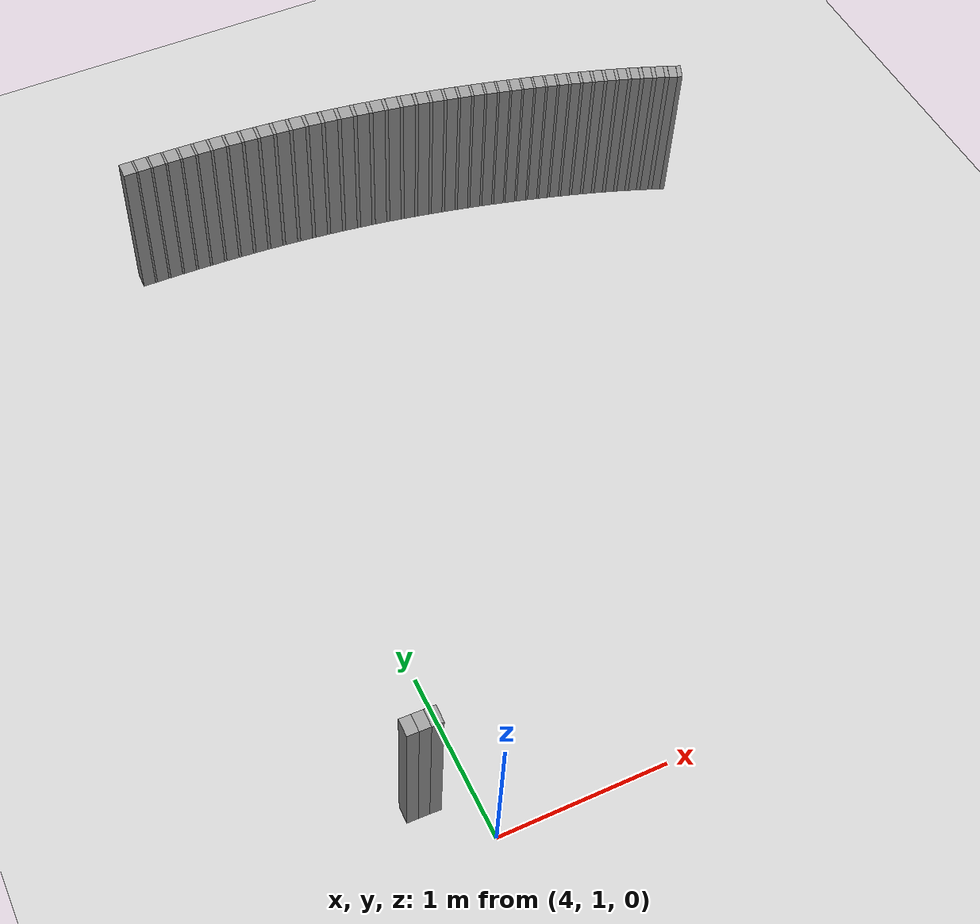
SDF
<sdf version="1.6">
 <world name="default">
  <include><uri>model://ground_plane</uri></include>
  <include><uri>model://sun</uri></include>
  <model name="wall_188_outward">
   <static>true</static>
   <link name="link">
    <collision name="collision">
     <geometry><box><size>0.07727841924268956 0.1 1.0</size></box></geometry>
    </collision>
    <visual name="visual">
     <geometry><box><size>0.07727841924268956 0.1 1.0</size></box></geometry>
     <material>
      <script><uri>file://media/materials/scripts/gazebo.material</uri><name>Gazebo/Gray</name></script>
     </material>
    </visual>
   </link>
   <pose>3.647428664491355 5.31667522721508 0.5 0 0 -0.01580204798125065</pose>
  </model>
  <model name="wall_189_outward">
   <static>true</static>
   <link name="link">
    <collision name="collision">
     <geometry><box><size>0.012891906259174314 0.1 1.0</size></box></geometry>
    </collision>
    <visual name="visual">
     <geometry><box><size>0.012891906259174314 0.1 1.0</size></box></geometry>
     <material>
      <script><uri>file://media/materials/scripts/gazebo.material</uri><name>Gazebo/Gray</name></script>
     </material>
    </visual>
   </link>
   <pose>3.6925078366192636 5.315942046926441 0.5 0 0 -0.01902503012592713</pose>
  </model>
  <model name="wall_190_outward">
   <static>true</static>
   <link name="link">
    <collision name="collision">
     <geometry><box><size>0.07802620091828069 0.1 1.0</size></box></geometry>
    </collision>
    <visual name="visual">
     <geometry><box><size>0.07802620091828069 0.1 1.0</size></box></geometry>
     <material>
      <script><uri>file://media/materials/scripts/gazebo.material</uri><name>Gazebo/Gray</name></script>
     </material>
    </visual>
   </link>
   <pose>3.737956068843183 5.314951527535559 0.5 0 0 -0.02224801227053007</pose>
  </model>
  <model name="wall_191_outward">
   <static>true</static>
   <link name="link">
    <collision name="collision">
     <geometry><box><size>0.013350150330681017 0.1 1.0</size></box></geometry>
    </collision>
    <visual name="visual">
     <geometry><box><size>0.013350150330681017 0.1 1.0</size></box></geometry>
     <material>
      <script><uri>file://media/materials/scripts/gazebo.material</uri><name>Gazebo/Gray</name></script>
     </material>
    </visual>
   </link>
   <pose>3.783632404927814 5.313912868322232 0.5 0 0 -0.025585556049465604</pose>
  </model>
  <model name="wall_192_outward">
   <static>true</static>
   <link name="link">
    <collision name="collision">
     <geometry><box><size>0.07872340769245163 0.1 1.0</size></box></geometry>
    </collision>
    <visual name="visual">
     <geometry><box><size>0.07872340769245163 0.1 1.0</size></box></geometry>
     <material>
      <script><uri>file://media/materials/scripts/gazebo.material</uri><name>Gazebo/Gray</name></script>
     </material>
    </visual>
   </link>
   <pose>3.8296505364530296 5.312603797678052 0.5 0 0 -0.028923099828373364</pose>
  </model>
  <model name="wall_193_outward">
   <static>true</static>
   <link name="link">
    <collision name="collision">
     <geometry><box><size>0.013996513063959892 0.1 1.0</size></box></geometry>
    </collision>
    <visual name="visual">
     <geometry><box><size>0.013996513063959892 0.1 1.0</size></box></geometry>
     <material>
      <script><uri>file://media/materials/scripts/gazebo.material</uri><name>Gazebo/Gray</name></script>
     </material>
    </visual>
   </link>
   <pose>3.8759903560807114 5.311238634542144 0.5 0 0 -0.03242223523492972</pose>
  </model>
  <model name="wall_194_outward">
   <static>true</static>
   <link name="link">
    <collision name="collision">
     <geometry><box><size>0.07935333420184466 0.1 1.0</size></box></geometry>
    </collision>
    <visual name="visual">
     <geometry><box><size>0.07935333420184466 0.1 1.0</size></box></geometry>
     <material>
      <script><uri>file://media/materials/scripts/gazebo.material</uri><name>Gazebo/Gray</name></script>
     </material>
    </visual>
   </link>
   <pose>3.922636006208039 5.30958684139737 0.5 0 0 -0.03592137064143385</pose>
  </model>
  <model name="wall_195_outward">
   <static>true</static>
   <link name="link">
    <collision name="collision">
     <geometry><box><size>0.01474797142907477 0.1 1.0</size></box></geometry>
    </collision>
    <visual name="visual">
     <geometry><box><size>0.01474797142907477 0.1 1.0</size></box></geometry>
     <material>
      <script><uri>file://media/materials/scripts/gazebo.material</uri><name>Gazebo/Gray</name></script>
     </material>
    </visual>
   </link>
   <pose>3.969655280000555 5.307869912415324 0.5 0 0 -0.03960837185220561</pose>
  </model>
  <model name="wall_196_outward">
   <static>true</static>
   <link name="link">
    <collision name="collision">
     <geometry><box><size>0.07989656697596527 0.1 1.0</size></box></geometry>
    </collision>
    <visual name="visual">
     <geometry><box><size>0.07989656697596527 0.1 1.0</size></box></geometry>
     <material>
      <script><uri>file://media/materials/scripts/gazebo.material</uri><name>Gazebo/Gray</name></script>
     </material>
    </visual>
   </link>
   <pose>4.0169343302522975 5.3058488816669875 0.5 0 0 -0.043295373062969676</pose>
  </model>
  <model name="wall_197_outward">
   <static>true</static>
   <link name="link">
    <collision name="collision">
     <geometry><box><size>0.015620475201341126 0.1 1.0</size></box></geometry>
    </collision>
    <visual name="visual">
     <geometry><box><size>0.015620475201341126 0.1 1.0</size></box></geometry>
     <material>
      <script><uri>file://media/materials/scripts/gazebo.material</uri><name>Gazebo/Gray</name></script>
     </material>
    </visual>
   </link>
   <pose>4.064646717323928 5.30375133585971 0.5 0 0 -0.04720050178886632</pose>
  </model>
  <model name="wall_198_outward">
   <static>true</static>
   <link name="link">
    <collision name="collision">
     <geometry><box><size>0.08033421723224742 0.1 1.0</size></box></geometry>
    </collision>
    <visual name="visual">
     <geometry><box><size>0.08033421723224742 0.1 1.0</size></box></geometry>
     <material>
      <script><uri>file://media/materials/scripts/gazebo.material</uri><name>Gazebo/Gray</name></script>
     </material>
    </visual>
   </link>
   <pose>4.112562922471209 5.301330953630019 0.5 0 0 -0.05110563051473025</pose>
  </model>
  <model name="wall_199_outward">
   <static>true</static>
   <link name="link">
    <collision name="collision">
     <geometry><box><size>0.016575133109164964 0.1 1.0</size></box></geometry>
    </collision>
    <visual name="visual">
     <geometry><box><size>0.016575133109164964 0.1 1.0</size></box></geometry>
     <material>
      <script><uri>file://media/materials/scripts/gazebo.material</uri><name>Gazebo/Gray</name></script>
     </material>
    </visual>
   </link>
   <pose>4.160952509444902 5.298821431285685 0.5 0 0 -0.05524942565085911</pose>
  </model>
  <model name="wall_200_outward">
   <static>true</static>
   <link name="link">
    <collision name="collision">
     <geometry><box><size>0.08064974550953258 0.1 1.0</size></box></geometry>
    </collision>
    <visual name="visual">
     <geometry><box><size>0.08064974550953258 0.1 1.0</size></box></geometry>
     <material>
      <script><uri>file://media/materials/scripts/gazebo.material</uri><name>Gazebo/Gray</name></script>
     </material>
    </visual>
   </link>
   <pose>4.2094811998857065 5.2959701646833235 0.5 0 0 -0.059393220787052475</pose>
  </model>
  <model name="wall_201_outward">
   <static>true</static>
   <link name="link">
    <collision name="collision">
     <geometry><box><size>0.017586016842672428 0.1 1.0</size></box></geometry>
    </collision>
    <visual name="visual">
     <geometry><box><size>0.017586016842672428 0.1 1.0</size></box></geometry>
     <material>
      <script><uri>file://media/materials/scripts/gazebo.material</uri><name>Gazebo/Gray</name></script>
     </material>
    </visual>
   </link>
   <pose>4.2585100939852465 5.293016025068051 0.5 0 0 -0.0637897391613486</pose>
  </model>
  <model name="wall_202_outward">
   <static>true</static>
   <link name="link">
    <collision name="collision">
     <geometry><box><size>0.08082783653020911 0.1 1.0</size></box></geometry>
    </collision>
    <visual name="visual">
     <geometry><box><size>0.08082783653020911 0.1 1.0</size></box></geometry>
     <material>
      <script><uri>file://media/materials/scripts/gazebo.material</uri><name>Gazebo/Gray</name></script>
     </material>
    </visual>
   </link>
   <pose>4.3076052236382605 5.28970196269617 0.5 0 0 -0.06818625753567119</pose>
  </model>
  <model name="wall_203_outward">
   <static>true</static>
   <link name="link">
    <collision name="collision">
     <geometry><box><size>0.018626294790823755 0.1 1.0</size></box></geometry>
    </collision>
    <visual name="visual">
     <geometry><box><size>0.018626294790823755 0.1 1.0</size></box></geometry>
     <material>
      <script><uri>file://media/materials/scripts/gazebo.material</uri><name>Gazebo/Gray</name></script>
     </material>
    </visual>
   </link>
   <pose>4.357213678918987 5.286270627314494 0.5 0 0 -0.0728428480621293</pose>
  </model>
  <model name="wall_204_outward">
   <static>true</static>
   <link name="link">
    <collision name="collision"><geometry><box><size>0.080857879080663 0.1 1.0</size></box></geometry></collision>
    <visual name="visual">
     <geometry><box><size>0.080857879080663 0.1 1.0</size></box></geometry>
     <material>
      <script><uri>file://media/materials/scripts/gazebo.material</uri><name>Gazebo/Gray</name></script>
     </material>
    </visual>
   </link>
   <pose>4.406809717978992 5.282462746291677 0.5 0 0 -0.07749943858862747</pose>
  </model>
  <model name="wall_205_outward">
   <static>true</static>
   <link name="link">
    <collision name="collision">
     <geometry><box><size>0.019657807465292547 0.1 1.0</size></box></geometry>
    </collision>
    <visual name="visual">
     <geometry><box><size>0.019657807465292547 0.1 1.0</size></box></geometry>
     <material>
      <script><uri>file://media/materials/scripts/gazebo.material</uri><name>Gazebo/Gray</name></script>
     </material>
    </visual>
   </link>
   <pose>4.4569128502807605 5.278523539940501 0.5 0 0 -0.08241391023734282</pose>
  </model>
  <model name="wall_206_outward">
   <static>true</static>
   <link name="link">
    <collision name="collision">
     <geometry><box><size>0.08073335329578757 0.1 1.0</size></box></geometry>
    </collision>
    <visual name="visual">
     <geometry><box><size>0.08073335329578757 0.1 1.0</size></box></geometry>
     <material>
      <script><uri>file://media/materials/scripts/gazebo.material</uri><name>Gazebo/Gray</name></script>
     </material>
    </visual>
   </link>
   <pose>4.50692124502179 5.274193740566446 0.5 0 0 -0.08732838188605083</pose>
  </model>
  <model name="wall_207_outward">
   <static>true</static>
   <link name="link">
    <collision name="collision">
     <geometry><box><size>0.02063904623943258 0.1 1.0</size></box></geometry>
    </collision>
    <visual name="visual">
     <geometry><box><size>0.02063904623943258 0.1 1.0</size></box></geometry>
     <material>
      <script><uri>file://media/materials/scripts/gazebo.material</uri><name>Gazebo/Gray</name></script>
     </material>
    </visual>
   </link>
   <pose>4.5574095140158 5.269719989284523 0.5 0 0 -0.09248816634100386</pose>
  </model>
  <model name="wall_208_outward">
   <static>true</static>
   <link name="link">
    <collision name="collision">
     <geometry><box><size>0.08045171913994867 0.1 1.0</size></box></geometry>
    </collision>
    <visual name="visual">
     <geometry><box><size>0.08045171913994867 0.1 1.0</size></box></geometry>
     <material>
      <script><uri>file://media/materials/scripts/gazebo.material</uri><name>Gazebo/Gray</name></script>
     </material>
    </visual>
   </link>
   <pose>4.607719164337246 5.264845182197952 0.5 0 0 -0.09764795079600505</pose>
  </model>
  <model name="wall_209_outward">
   <static>true</static>
   <link name="link">
    <collision name="collision">
     <geometry><box><size>0.021530705416368836 0.1 1.0</size></box></geometry>
    </collision>
    <visual name="visual">
     <geometry><box><size>0.021530705416368836 0.1 1.0</size></box></geometry>
     <material>
      <script><uri>file://media/materials/scripts/gazebo.material</uri><name>Gazebo/Gray</name></script>
     </material>
    </visual>
   </link>
   <pose>4.658461661428316 5.259816248737436 0.5 0 0 -0.10303065314265207</pose>
  </model>
  <model name="wall_210_outward">
   <static>true</static>
   <link name="link">
    <collision name="collision">
     <geometry><box><size>0.08001548251641247 0.1 1.0</size></box></geometry>
    </collision>
    <visual name="visual">
     <geometry><box><size>0.08001548251641247 0.1 1.0</size></box></geometry>
     <material>
      <script><uri>file://media/materials/scripts/gazebo.material</uri><name>Gazebo/Gray</name></script>
     </material>
    </visual>
   </link>
   <pose>4.708942782702353 5.2543801667788745 0.5 0 0 -0.10841335548932292</pose>
  </model>
  <model name="wall_211_outward">
   <static>true</static>
   <link name="link">
    <collision name="collision">
     <geometry><box><size>0.02229293994967851 0.1 1.0</size></box></geometry>
    </collision>
    <visual name="visual">
     <geometry><box><size>0.02229293994967851 0.1 1.0</size></box></geometry>
     <material>
      <script><uri>file://media/materials/scripts/gazebo.material</uri><name>Gazebo/Gray</name></script>
     </material>
    </visual>
   </link>
   <pose>4.759789775133605 5.248783485978038 0.5 0 0 -0.11398661932879399</pose>
  </model>
  <model name="wall_212_outward">
   <static>true</static>
   <link name="link">
    <collision name="collision">
     <geometry><box><size>0.07943056580692044 0.1 1.0</size></box></geometry>
    </collision>
    <visual name="visual">
     <geometry><box><size>0.07943056580692044 0.1 1.0</size></box></geometry>
     <material>
      <script><uri>file://media/materials/scripts/gazebo.material</uri><name>Gazebo/Gray</name></script>
     </material>
    </visual>
   </link>
   <pose>4.81029567523535 5.242778637067641 0.5 0 0 -0.11955988316829001</pose>
  </model>
  <model name="wall_213_outward">
   <static>true</static>
   <link name="link">
    <collision name="collision">
     <geometry><box><size>0.022867113179968406 0.1 1.0</size></box></geometry>
    </collision>
    <visual name="visual">
     <geometry><box><size>0.022867113179968406 0.1 1.0</size></box></geometry>
     <material>
      <script><uri>file://media/materials/scripts/gazebo.material</uri><name>Gazebo/Gray</name></script>
     </material>
    </visual>
   </link>
   <pose>4.861071393075609 5.236612972549965 0.5 0 0 -0.12527669260263002</pose>
  </model>
  <model name="wall_214_outward">
   <static>true</static>
   <link name="link">
    <collision name="collision">
     <geometry><box><size>0.07870846846684233 0.1 1.0</size></box></geometry>
    </collision>
    <visual name="visual">
     <geometry><box><size>0.07870846846684233 0.1 1.0</size></box></geometry>
     <material>
      <script><uri>file://media/materials/scripts/gazebo.material</uri><name>Gazebo/Gray</name></script>
     </material>
    </visual>
   </link>
   <pose>4.911432417662136 5.230043939604231 0.5 0 0 -0.1309935020369175</pose>
  </model>
  <model name="wall_215_outward">
   <static>true</static>
   <link name="link">
    <collision name="collision">
     <geometry><box><size>0.023216986455440507 0.1 1.0</size></box></geometry>
    </collision>
    <visual name="visual">
     <geometry><box><size>0.023216986455440507 0.1 1.0</size></box></geometry>
     <material>
      <script><uri>file://media/materials/scripts/gazebo.material</uri><name>Gazebo/Gray</name></script>
     </material>
    </visual>
   </link>
   <pose>4.961949532893442 5.223320453296332 0.5 0 0 -0.13679778124145478</pose>
  </model>
  <model name="wall_216_outward">
   <static>true</static>
   <link name="link">
    <collision name="collision">
     <geometry><box><size>0.07786050493273314 0.1 1.0</size></box></geometry>
    </collision>
    <visual name="visual">
     <geometry><box><size>0.07786050493273314 0.1 1.0</size></box></geometry>
     <material>
      <script><uri>file://media/materials/scripts/gazebo.material</uri><name>Gazebo/Gray</name></script>
     </material>
    </visual>
   </link>
   <pose>5.011984669543676 5.216204647531415 0.5 0 0 -0.14260206044592516</pose>
  </model>
  <model name="wall_217_outward">
   <static>true</static>
   <link name="link">
    <collision name="collision">
     <geometry><box><size>0.02330758002541059 0.1 1.0</size></box></geometry>
    </collision>
    <visual name="visual">
     <geometry><box><size>0.02330758002541059 0.1 1.0</size></box></geometry>
     <material>
      <script><uri>file://media/materials/scripts/gazebo.material</uri><name>Gazebo/Gray</name></script>
     </material>
    </visual>
   </link>
   <pose>5.062045414466303 5.208948493773903 0.5 0 0 -0.1484289884259022</pose>
  </model>
  <model name="wall_218_outward">
   <static>true</static>
   <link name="link">
    <collision name="collision">
     <geometry><box><size>0.0769013507049121 0.1 1.0</size></box></geometry>
    </collision>
    <visual name="visual">
     <geometry><box><size>0.0769013507049121 0.1 1.0</size></box></geometry>
     <material>
      <script><uri>file://media/materials/scripts/gazebo.material</uri><name>Gazebo/Gray</name></script>
     </material>
    </visual>
   </link>
   <pose>5.111565183698973 5.201317328039374 0.5 0 0 -0.15425591640592706</pose>
  </model>
  <model name="wall_219_outward">
   <static>true</static>
   <link name="link">
    <collision name="collision">
     <geometry><box><size>0.023090253944920165 0.1 1.0</size></box></geometry>
    </collision>
    <visual name="visual">
     <geometry><box><size>0.023090253944920165 0.1 1.0</size></box></geometry>
     <material>
      <script><uri>file://media/materials/scripts/gazebo.material</uri><name>Gazebo/Gray</name></script>
     </material>
    </visual>
   </link>
   <pose>5.160956912579749 5.193569904228426 0.5 0 0 -0.16002851195201495</pose>
  </model>
  <model name="wall_220_outward">
   <static>true</static>
   <link name="link">
    <collision name="collision">
     <geometry><box><size>0.07584521009051087 0.1 1.0</size></box></geometry>
    </collision>
    <visual name="visual">
     <geometry><box><size>0.07584521009051087 0.1 1.0</size></box></geometry>
     <material>
      <script><uri>file://media/materials/scripts/gazebo.material</uri><name>Gazebo/Gray</name></script>
     </material>
    </visual>
   </link>
   <pose>5.209757076165588 5.18547138858943 0.5 0 0 -0.1658011074980599</pose>
  </model>
  <model name="wall_221_outward">
   <static>true</static>
   <link name="link">
    <collision name="collision">
     <geometry><box><size>0.022607672009602803 0.1 1.0</size></box></geometry>
    </collision>
    <visual name="visual">
     <geometry><box><size>0.022607672009602803 0.1 1.0</size></box></geometry>
     <material>
      <script><uri>file://media/materials/scripts/gazebo.material</uri><name>Gazebo/Gray</name></script>
     </material>
    </visual>
   </link>
   <pose>5.258297725838565 5.177283951009128 0.5 0 0 -0.17145305559187818</pose>
  </model>
  <model name="wall_222_outward">
   <static>true</static>
   <link name="link">
    <collision name="collision">
     <geometry><box><size>0.07470604317660057 0.1 1.0</size></box></geometry>
    </collision>
    <visual name="visual">
     <geometry><box><size>0.07470604317660057 0.1 1.0</size></box></geometry>
     <material>
      <script><uri>file://media/materials/scripts/gazebo.material</uri><name>Gazebo/Gray</name></script>
     </material>
    </visual>
   </link>
   <pose>5.306204564181076 5.1687744772954005 0.5 0 0 -0.17710500368570034</pose>
  </model>
  <model name="wall_223_outward">
   <static>true</static>
   <link name="link">
    <collision name="collision">
     <geometry><box><size>0.021820565196232343 0.1 1.0</size></box></geometry>
    </collision>
    <visual name="visual">
     <geometry><box><size>0.021820565196232343 0.1 1.0</size></box></geometry>
     <material>
      <script><uri>file://media/materials/scripts/gazebo.material</uri><name>Gazebo/Gray</name></script>
     </material>
    </visual>
   </link>
   <pose>5.353702281405562 5.160212861688851 0.5 0 0 -0.1825601720413023</pose>
  </model>
  <model name="wall_224_outward">
   <static>true</static>
   <link name="link">
    <collision name="collision">
     <geometry><box><size>0.07349878759930578 0.1 1.0</size></box></geometry>
    </collision>
    <visual name="visual">
     <geometry><box><size>0.07349878759930578 0.1 1.0</size></box></geometry>
     <material>
      <script><uri>file://media/materials/scripts/gazebo.material</uri><name>Gazebo/Gray</name></script>
     </material>
    </visual>
   </link>
   <pose>5.400533021961488 5.151363310194651 0.5 0 0 -0.18801534039693013</pose>
  </model>
  <model name="wall_225_outward">
   <static>true</static>
   <link name="link">
    <collision name="collision">
     <geometry><box><size>0.020822118473834996 0.1 1.0</size></box></geometry>
    </collision>
    <visual name="visual">
     <geometry><box><size>0.020822118473834996 0.1 1.0</size></box></geometry>
     <material>
      <script><uri>file://media/materials/scripts/gazebo.material</uri><name>Gazebo/Gray</name></script>
     </material>
    </visual>
   </link>
   <pose>5.446852103912725 5.142495356077863 0.5 0 0 -0.19322089352516272</pose>
  </model>
  <model name="wall_226_outward">
   <static>true</static>
   <link name="link">
    <collision name="collision">
     <geometry><box><size>0.07223687454347649 0.1 1.0</size></box></geometry>
    </collision>
    <visual name="visual">
     <geometry><box><size>0.07223687454347649 0.1 1.0</size></box></geometry>
     <material>
      <script><uri>file://media/materials/scripts/gazebo.material</uri><name>Gazebo/Gray</name></script>
     </material>
    </visual>
   </link>
   <pose>5.492479142780951 5.133376300212386 0.5 0 0 -0.1984264466534343</pose>
  </model>
  <model name="wall_227_outward">
   <static>true</static>
   <link name="link">
    <collision name="collision">
     <geometry><box><size>0.019647853960778755 0.1 1.0</size></box></geometry>
    </collision>
    <visual name="visual">
     <geometry><box><size>0.019647853960778755 0.1 1.0</size></box></geometry>
     <material>
      <script><uri>file://media/materials/scripts/gazebo.material</uri><name>Gazebo/Gray</name></script>
     </material>
    </visual>
   </link>
   <pose>5.537510396594177 5.1242725398884605 0.5 0 0 -0.20333842989600812</pose>
  </model>
  <model name="wall_228_outward">
   <static>true</static>
   <link name="link">
    <collision name="collision">
     <geometry><box><size>0.07093219904109824 0.1 1.0</size></box></geometry>
    </collision>
    <visual name="visual">
     <geometry><box><size>0.07093219904109824 0.1 1.0</size></box></geometry>
     <material>
      <script><uri>file://media/materials/scripts/gazebo.material</uri><name>Gazebo/Gray</name></script>
     </material>
    </visual>
   </link>
   <pose>5.581831753602458 5.114956134628192 0.5 0 0 -0.20825041313853127</pose>
  </model>
  <model name="wall_229_outward">
   <static>true</static>
   <link name="link">
    <collision name="collision">
     <geometry><box><size>0.01837265571247342 0.1 1.0</size></box></geometry>
    </collision>
    <visual name="visual">
     <geometry><box><size>0.01837265571247342 0.1 1.0</size></box></geometry>
     <material>
      <script><uri>file://media/materials/scripts/gazebo.material</uri><name>Gazebo/Gray</name></script>
     </material>
    </visual>
   </link>
   <pose>5.625510608304257 5.105683052669045 0.5 0 0 -0.21284359321724247</pose>
  </model>
  <model name="wall_230_outward">
   <static>true</static>
   <link name="link">
    <collision name="collision">
     <geometry><box><size>0.06959847372770529 0.1 1.0</size></box></geometry>
    </collision>
    <visual name="visual">
     <geometry><box><size>0.06959847372770529 0.1 1.0</size></box></geometry>
     <material>
      <script><uri>file://media/materials/scripts/gazebo.material</uri><name>Gazebo/Gray</name></script>
     </material>
    </visual>
   </link>
   <pose>5.668469479825427 5.096235380095457 0.5 0 0 -0.21743677329597155</pose>
  </model>
  <model name="wall_231_outward">
   <static>true</static>
   <link name="link">
    <collision name="collision">
     <geometry><box><size>0.01709620520276379 0.1 1.0</size></box></geometry>
    </collision>
    <visual name="visual">
     <geometry><box><size>0.01709620520276379 0.1 1.0</size></box></geometry>
     <material>
      <script><uri>file://media/materials/scripts/gazebo.material</uri><name>Gazebo/Gray</name></script>
     </material>
    </visual>
   </link>
   <pose>5.7107881882921925 5.086848510627764 0.5 0 0 -0.22171083760951044</pose>
  </model>
  <model name="wall_232_outward">
   <static>true</static>
   <link name="link">
    <collision name="collision">
     <geometry><box><size>0.06824786157410459 0.1 1.0</size></box></geometry>
    </collision>
    <visual name="visual">
     <geometry><box><size>0.06824786157410459 0.1 1.0</size></box></geometry>
     <material>
      <script><uri>file://media/materials/scripts/gazebo.material</uri><name>Gazebo/Gray</name></script>
     </material>
    </visual>
   </link>
   <pose>5.752383348318519 5.077322768277504 0.5 0 0 -0.22598490192299256</pose>
  </model>
  <model name="wall_233_outward">
   <static>true</static>
   <link name="link">
    <collision name="collision">
     <geometry><box><size>0.015906188266922524 0.1 1.0</size></box></geometry>
    </collision>
    <visual name="visual">
     <geometry><box><size>0.015906188266922524 0.1 1.0</size></box></geometry>
     <material>
      <script><uri>file://media/materials/scripts/gazebo.material</uri><name>Gazebo/Gray</name></script>
     </material>
    </visual>
   </link>
   <pose>5.7933833708743006 5.067863916069832 0.5 0 0 -0.22996145946992835</pose>
  </model>
  <model name="wall_234_outward">
   <static>true</static>
   <link name="link">
    <collision name="collision">
     <geometry><box><size>0.06689387026733963 0.1 1.0</size></box></geometry>
    </collision>
    <visual name="visual">
     <geometry><box><size>0.06689387026733963 0.1 1.0</size></box></geometry>
     <material>
      <script><uri>file://media/materials/scripts/gazebo.material</uri><name>Gazebo/Gray</name></script>
     </material>
    </visual>
   </link>
   <pose>5.833662977589118 5.058297751746597 0.5 0 0 -0.23393801701689781</pose>
  </model>
  <model name="wall_235_outward">
   <static>true</static>
   <link name="link">
    <collision name="collision">
     <geometry><box><size>0.014880014332928551 0.1 1.0</size></box></geometry>
    </collision>
    <visual name="visual">
     <geometry><box><size>0.014880014332928551 0.1 1.0</size></box></geometry>
     <material>
      <script><uri>file://media/materials/scripts/gazebo.material</uri><name>Gazebo/Gray</name></script>
     </material>
    </visual>
   </link>
   <pose>5.873429737405212 5.04879283613717 0.5 0 0 -0.23765802918000886</pose>
  </model>
  <model name="wall_236_outward">
   <static>true</static>
   <link name="link">
    <collision name="collision">
     <geometry><box><size>0.0655499487100588 0.1 1.0</size></box></geometry>
    </collision>
    <visual name="visual">
     <geometry><box><size>0.0655499487100588 0.1 1.0</size></box></geometry>
     <material>
      <script><uri>file://media/materials/scripts/gazebo.material</uri><name>Gazebo/Gray</name></script>
     </material>
    </visual>
   </link>
   <pose>5.912485431961837 5.039206695776402 0.5 0 0 -0.24137804134312826</pose>
  </model>
  <model name="wall_237_outward">
   <static>true</static>
   <link name="link">
    <collision name="collision">
     <geometry><box><size>0.014128351470247985 0.1 1.0</size></box></geometry>
    </collision>
    <visual name="visual">
     <geometry><box><size>0.014128351470247985 0.1 1.0</size></box></geometry>
     <material>
      <script><uri>file://media/materials/scripts/gazebo.material</uri><name>Gazebo/Gray</name></script>
     </material>
    </visual>
   </link>
   <pose>5.951163617550609 5.029659290317641 0.5 0 0 -0.24491013655492808</pose>
  </model>
  <model name="wall_238_outward">
   <static>true</static>
   <link name="link">
    <collision name="collision">
     <geometry><box><size>0.06422979339589341 0.1 1.0</size></box></geometry>
    </collision>
    <visual name="visual">
     <geometry><box><size>0.06422979339589341 0.1 1.0</size></box></geometry>
     <material>
      <script><uri>file://media/materials/scripts/gazebo.material</uri><name>Gazebo/Gray</name></script>
     </material>
    </visual>
   </link>
   <pose>5.989145853642354 5.02004957503115 0.5 0 0 -0.24844223176668598</pose>
  </model>
  <model name="wall_239_outward">
   <static>true</static>
   <link name="link">
    <collision name="collision">
     <geometry><box><size>0.013696295683003469 0.1 1.0</size></box></geometry>
    </collision>
    <visual name="visual">
     <geometry><box><size>0.013696295683003469 0.1 1.0</size></box></geometry>
     <material>
      <script><uri>file://media/materials/scripts/gazebo.material</uri><name>Gazebo/Gray</name></script>
     </material>
    </visual>
   </link>
   <pose>6.0269067971726376 5.0104460649965095 0.5 0 0 -0.2518663123783123</pose>
  </model>
  <model name="wall_240_outward">
   <static>true</static>
   <link name="link">
    <collision name="collision">
     <geometry><box><size>0.06294689489059106 0.1 1.0</size></box></geometry>
    </collision>
    <visual name="visual">
     <geometry><box><size>0.06294689489059106 0.1 1.0</size></box></geometry>
     <material>
      <script><uri>file://media/materials/scripts/gazebo.material</uri><name>Gazebo/Gray</name></script>
     </material>
    </visual>
   </link>
   <pose>6.063992272269855 5.000791549206463 0.5 0 0 -0.25529039298986783</pose>
  </model>
  <model name="wall_241_outward">
   <static>true</static>
   <link name="link">
    <collision name="collision">
     <geometry><box><size>0.01359402446315659 0.1 1.0</size></box></geometry>
    </collision>
    <visual name="visual">
     <geometry><box><size>0.01359402446315659 0.1 1.0</size></box></geometry>
     <material>
      <script><uri>file://media/materials/scripts/gazebo.material</uri><name>Gazebo/Gray</name></script>
     </material>
    </visual>
   </link>
   <pose>6.101016515263151 4.991104906659097 0.5 0 0 -0.258688905647702</pose>
  </model>
  <model name="wall_242_outward">
   <static>true</static>
   <link name="link">
    <collision name="collision">
     <geometry><box><size>0.061713577048614195 0.1 1.0</size></box></geometry>
    </collision>
    <visual name="visual">
     <geometry><box><size>0.061713577048614195 0.1 1.0</size></box></geometry>
     <material>
      <script><uri>file://media/materials/scripts/gazebo.material</uri><name>Gazebo/Gray</name></script>
     </material>
    </visual>
   </link>
   <pose>6.137390432508919 4.981371231445676 0.5 0 0 -0.26208741830557863</pose>
  </model>
  <model name="wall_243_outward">
   <static>true</static>
   <link name="link">
    <collision name="collision">
     <geometry><box><size>0.013855394358039798 0.1 1.0</size></box></geometry>
    </collision>
    <visual name="visual">
     <geometry><box><size>0.013855394358039798 0.1 1.0</size></box></geometry>
     <material>
      <script><uri>file://media/materials/scripts/gazebo.material</uri><name>Gazebo/Gray</name></script>
     </material>
    </visual>
   </link>
   <pose>6.173878367252727 4.9715582088142085 0.5 0 0 -0.2655512738218497</pose>
  </model>
  <model name="wall_244_outward">
   <static>true</static>
   <link name="link">
    <collision name="collision">
     <geometry><box><size>0.06054106900732577 0.1 1.0</size></box></geometry>
    </collision>
    <visual name="visual">
     <geometry><box><size>0.06054106900732577 0.1 1.0</size></box></geometry>
     <material>
      <script><uri>file://media/materials/scripts/gazebo.material</uri><name>Gazebo/Gray</name></script>
     </material>
    </visual>
   </link>
   <pose>6.209745032555206 4.9616947284803015 0.5 0 0 -0.2690151293380437</pose>
  </model>
  <model name="wall_245_outward">
   <static>true</static>
   <link name="link">
    <collision name="collision">
     <geometry><box><size>0.014445622677760037 0.1 1.0</size></box></geometry>
    </collision>
    <visual name="visual">
     <geometry><box><size>0.014445622677760037 0.1 1.0</size></box></geometry>
     <material>
      <script><uri>file://media/materials/scripts/gazebo.material</uri><name>Gazebo/Gray</name></script>
     </material>
    </visual>
   </link>
   <pose>6.245882881708761 4.95170453381364 0.5 0 0 -0.27262654285770127</pose>
  </model>
  <model name="wall_246_outward">
   <static>true</static>
   <link name="link">
    <collision name="collision">
     <geometry><box><size>0.05943900807390747 0.1 1.0</size></box></geometry>
    </collision>
    <visual name="visual">
     <geometry><box><size>0.05943900807390747 0.1 1.0</size></box></geometry>
     <material>
      <script><uri>file://media/materials/scripts/gazebo.material</uri><name>Gazebo/Gray</name></script>
     </material>
    </visual>
   </link>
   <pose>6.281431719918988 4.941654062800137 0.5 0 0 -0.27623795637730925</pose>
  </model>
  <model name="wall_247_outward">
   <static>true</static>
   <link name="link">
    <collision name="collision">
     <geometry><box><size>0.01533863791968133 0.1 1.0</size></box></geometry>
    </collision>
    <visual name="visual">
     <geometry><box><size>0.01533863791968133 0.1 1.0</size></box></geometry>
     <material>
      <script><uri>file://media/materials/scripts/gazebo.material</uri><name>Gazebo/Gray</name></script>
     </material>
    </visual>
   </link>
   <pose>6.3173949936936395 4.9314284247816875 0.5 0 0 -0.2800726252551523</pose>
  </model>
  <model name="wall_248_outward">
   <static>true</static>
   <link name="link">
    <collision name="collision">
     <geometry><box><size>0.05841386729722604 0.1 1.0</size></box></geometry>
    </collision>
    <visual name="visual">
     <geometry><box><size>0.05841386729722604 0.1 1.0</size></box></geometry>
     <material>
      <script><uri>file://media/materials/scripts/gazebo.material</uri><name>Gazebo/Gray</name></script>
     </material>
    </visual>
   </link>
   <pose>6.352803210945789 4.921127314955001 0.5 0 0 -0.28390729413300975</pose>
  </model>
  <model name="wall_249_outward">
   <static>true</static>
   <link name="link">
    <collision name="collision">
     <geometry><box><size>0.016435371554517807 0.1 1.0</size></box></geometry>
    </collision>
    <visual name="visual">
     <geometry><box><size>0.016435371554517807 0.1 1.0</size></box></geometry>
     <material>
      <script><uri>file://media/materials/scripts/gazebo.material</uri><name>Gazebo/Gray</name></script>
     </material>
    </visual>
   </link>
   <pose>6.388720134801343 4.91061196104461 0.5 0 0 -0.28801614858302543</pose>
  </model>
  <model name="wall_250_outward">
   <static>true</static>
   <link name="link">
    <collision name="collision">
     <geometry><box><size>0.05747007363317509 0.1 1.0</size></box></geometry>
    </collision>
    <visual name="visual">
     <geometry><box><size>0.05747007363317509 0.1 1.0</size></box></geometry>
     <material>
      <script><uri>file://media/materials/scripts/gazebo.material</uri><name>Gazebo/Gray</name></script>
     </material>
    </visual>
   </link>
   <pose>6.4241169782130445 4.900002380610423 0.5 0 0 -0.2921250030330737</pose>
  </model>
  <model name="wall_251_outward">
   <static>true</static>
   <link name="link">
    <collision name="collision">
     <geometry><box><size>0.017690187185119152 0.1 1.0</size></box></geometry>
    </collision>
    <visual name="visual">
     <geometry><box><size>0.017690187185119152 0.1 1.0</size></box></geometry>
     <material>
      <script><uri>file://media/materials/scripts/gazebo.material</uri><name>Gazebo/Gray</name></script>
     </material>
    </visual>
   </link>
   <pose>6.460093642889304 4.889142324020282 0.5 0 0 -0.29654756424618517</pose>
  </model>
  <model name="wall_252_outward">
   <static>true</static>
   <link name="link">
    <collision name="collision">
     <geometry><box><size>0.05660815359734118 0.1 1.0</size></box></geometry>
    </collision>
    <visual name="visual">
     <geometry><box><size>0.05660815359734118 0.1 1.0</size></box></geometry>
     <material>
      <script><uri>file://media/materials/scripts/gazebo.material</uri><name>Gazebo/Gray</name></script>
     </material>
    </visual>
   </link>
   <pose>6.495584447596642 4.878166954079391 0.5 0 0 -0.30097012545930024</pose>
  </model>
  <model name="wall_253_outward">
   <static>true</static>
   <link name="link">
    <collision name="collision">
     <geometry><box><size>0.019019948128651896 0.1 1.0</size></box></geometry>
    </collision>
    <visual name="visual">
     <geometry><box><size>0.019019948128651896 0.1 1.0</size></box></geometry>
     <material>
      <script><uri>file://media/materials/scripts/gazebo.material</uri><name>Gazebo/Gray</name></script>
     </material>
    </visual>
   </link>
   <pose>6.5316852242697045 4.866913942024571 0.5 0 0 -0.3057251304099267</pose>
  </model>
  <model name="wall_254_outward">
   <static>true</static>
   <link name="link">
    <collision name="collision">
     <geometry><box><size>0.05582379493271208 0.1 1.0</size></box></geometry>
    </collision>
    <visual name="visual">
     <geometry><box><size>0.05582379493271208 0.1 1.0</size></box></geometry>
     <material>
      <script><uri>file://media/materials/scripts/gazebo.material</uri><name>Gazebo/Gray</name></script>
     </material>
    </visual>
   </link>
   <pose>6.567331556504871 4.855524057679212 0.5 0 0 -0.31048013536058705</pose>
  </model>
  <model name="wall_255_outward">
   <static>true</static>
   <link name="link">
    <collision name="collision">
     <geometry><box><size>0.02035855034976337 0.1 1.0</size></box></geometry>
    </collision>
    <visual name="visual">
     <geometry><box><size>0.02035855034976337 0.1 1.0</size></box></geometry>
     <material>
      <script><uri>file://media/materials/scripts/gazebo.material</uri><name>Gazebo/Gray</name></script>
     </material>
    </visual>
   </link>
   <pose>6.603585521596507 4.843837309276196 0.5 0 0 -0.3155697949223247</pose>
  </model>
  <model name="wall_256_outward">
   <static>true</static>
   <link name="link">
    <collision name="collision">
     <geometry><box><size>0.05511061781414837 0.1 1.0</size></box></geometry>
    </collision>
    <visual name="visual">
     <geometry><box><size>0.05511061781414837 0.1 1.0</size></box></geometry>
     <material>
      <script><uri>file://media/materials/scripts/gazebo.material</uri><name>Gazebo/Gray</name></script>
     </material>
    </visual>
   </link>
   <pose>6.6394128943817154 4.831992862092257 0.5 0 0 -0.32065945448399713</pose>
  </model>
  <model name="wall_257_outward">
   <static>true</static>
   <link name="link">
    <collision name="collision">
     <geometry><box><size>0.0216699952689935 0.1 1.0</size></box></geometry>
    </collision>
    <visual name="visual">
     <geometry><box><size>0.0216699952689935 0.1 1.0</size></box></geometry>
     <material>
      <script><uri>file://media/materials/scripts/gazebo.material</uri><name>Gazebo/Gray</name></script>
     </material>
    </visual>
   </link>
   <pose>6.675827709115305 4.819836870086885 0.5 0 0 -0.32607697980156597</pose>
  </model>
  <model name="wall_258_outward">
   <static>true</static>
   <link name="link">
    <collision name="collision">
     <geometry><box><size>0.054457437306356805 0.1 1.0</size></box></geometry>
    </collision>
    <visual name="visual">
     <geometry><box><size>0.054457437306356805 0.1 1.0</size></box></geometry>
     <material>
      <script><uri>file://media/materials/scripts/gazebo.material</uri><name>Gazebo/Gray</name></script>
     </material>
    </visual>
   </link>
   <pose>6.7118380761140894 4.807504339630471 0.5 0 0 -0.33149450511911244</pose>
  </model>
  <model name="wall_259_outward">
   <static>true</static>
   <link name="link">
    <collision name="collision">
     <geometry><box><size>0.022966501505290306 0.1 1.0</size></box></geometry>
    </collision>
    <visual name="visual">
     <geometry><box><size>0.022966501505290306 0.1 1.0</size></box></geometry>
     <material>
      <script><uri>file://media/materials/scripts/gazebo.material</uri><name>Gazebo/Gray</name></script>
     </material>
    </visual>
   </link>
   <pose>6.748420812747624 4.794842994998317 0.5 0 0 -0.33723616204257195</pose>
  </model>
  <model name="wall_260_outward">
   <static>true</static>
   <link name="link">
    <collision name="collision">
     <geometry><box><size>0.05385167364594216 0.1 1.0</size></box></geometry>
    </collision>
    <visual name="visual">
     <geometry><box><size>0.05385167364594216 0.1 1.0</size></box></geometry>
     <material>
      <script><uri>file://media/materials/scripts/gazebo.material</uri><name>Gazebo/Gray</name></script>
     </material>
    </visual>
   </link>
   <pose>6.78461485046596 4.781988445262515 0.5 0 0 -0.34297781896601004</pose>
  </model>
  <model name="wall_261_outward">
   <static>true</static>
   <link name="link">
    <collision name="collision">
     <geometry><box><size>0.0242876923570472 0.1 1.0</size></box></geometry>
    </collision>
    <visual name="visual">
     <geometry><box><size>0.0242876923570472 0.1 1.0</size></box></geometry>
     <material>
      <script><uri>file://media/materials/scripts/gazebo.material</uri><name>Gazebo/Gray</name></script>
     </material>
    </visual>
   </link>
   <pose>6.821384006552762 4.768780219223738 0.5 0 0 -0.34904977936607884</pose>
  </model>
  <model name="wall_262_outward">
   <static>true</static>
   <link name="link">
    <collision name="collision">
     <geometry><box><size>0.05327833193427358 0.1 1.0</size></box></geometry>
    </collision>
    <visual name="visual">
     <geometry><box><size>0.05327833193427358 0.1 1.0</size></box></geometry>
     <material>
      <script><uri>file://media/materials/scripts/gazebo.material</uri><name>Gazebo/Gray</name></script>
     </material>
    </visual>
   </link>
   <pose>6.85777254894086 4.755364404418071 0.5 0 0 -0.3551217397661722</pose>
  </model>
  <model name="wall_263_outward">
   <static>true</static>
   <link name="link">
    <collision name="collision">
     <geometry><box><size>0.025646458750927588 0.1 1.0</size></box></geometry>
    </collision>
    <visual name="visual">
     <geometry><box><size>0.025646458750927588 0.1 1.0</size></box></geometry>
     <material>
      <script><uri>file://media/materials/scripts/gazebo.material</uri><name>Gazebo/Gray</name></script>
     </material>
    </visual>
   </link>
   <pose>6.894743820663414 4.741566155598897 0.5 0 0 -0.36153339838367565</pose>
  </model>
  <model name="wall_264_outward">
   <static>true</static>
   <link name="link">
    <collision name="collision">
     <geometry><box><size>0.05272192542570131 0.1 1.0</size></box></geometry>
    </collision>
    <visual name="visual">
     <geometry><box><size>0.05272192542570131 0.1 1.0</size></box></geometry>
     <material>
      <script><uri>file://media/materials/scripts/gazebo.material</uri><name>Gazebo/Gray</name></script>
     </material>
    </visual>
   </link>
   <pose>6.931334682684118 4.727548458572123 0.5 0 0 -0.3679450570011884</pose>
  </model>
  <model name="wall_265_outward">
   <static>true</static>
   <link name="link">
    <collision name="collision">
     <geometry><box><size>0.02716607156942595 0.1 1.0</size></box></geometry>
    </collision>
    <visual name="visual">
     <geometry><box><size>0.02716607156942595 0.1 1.0</size></box></geometry>
     <material>
      <script><uri>file://media/materials/scripts/gazebo.material</uri><name>Gazebo/Gray</name></script>
     </material>
    </visual>
   </link>
   <pose>6.968571694172478 4.713094688278684 0.5 0 0 -0.3747366271040909</pose>
  </model>
  <model name="wall_266_outward">
   <static>true</static>
   <link name="link">
    <collision name="collision"><geometry><box><size>0.052168803758587 0.1 1.0</size></box></geometry></collision>
    <visual name="visual">
     <geometry><box><size>0.052168803758587 0.1 1.0</size></box></geometry>
     <material>
      <script><uri>file://media/materials/scripts/gazebo.material</uri><name>Gazebo/Gray</name></script>
     </material>
    </visual>
   </link>
   <pose>7.005420969977932 4.698410678573603 0.5 0 0 -0.3815281972070198</pose>
  </model>
  <model name="wall_267_outward">
   <static>true</static>
   <link name="link">
    <collision name="collision">
     <geometry><box><size>0.028979749279506944 0.1 1.0</size></box></geometry>
    </collision>
    <visual name="visual">
     <geometry><box><size>0.028979749279506944 0.1 1.0</size></box></geometry>
     <material>
      <script><uri>file://media/materials/scripts/gazebo.material</uri><name>Gazebo/Gray</name></script>
     </material>
    </visual>
   </link>
   <pose>7.043038382142955 4.6832059958074606 0.5 0 0 -0.38877319790844295</pose>
  </model>
  <model name="wall_79_inward">
   <static>true</static>
   <link name="link">
    <collision name="collision">
     <geometry><box><size>0.06490510196648415 0.1 1.0</size></box></geometry>
    </collision>
    <visual name="visual">
     <geometry><box><size>0.06490510196648415 0.1 1.0</size></box></geometry>
     <material>
      <script><uri>file://media/materials/scripts/gazebo.material</uri><name>Gazebo/Gray</name></script>
     </material>
    </visual>
   </link>
   <pose>3.6488568265230605 1.315943983388808 0.5 0 0 -0.022248012270531678</pose>
  </model>
  <model name="wall_80_inward">
   <static>true</static>
   <link name="link">
    <collision name="collision">
     <geometry><box><size>0.06504999597412617 0.1 1.0</size></box></geometry>
    </collision>
    <visual name="visual">
     <geometry><box><size>0.06504999597412617 0.1 1.0</size></box></geometry>
     <material>
      <script><uri>file://media/materials/scripts/gazebo.material</uri><name>Gazebo/Gray</name></script>
     </material>
    </visual>
   </link>
   <pose>3.7138127408640456 1.3142814455876715 0.5 0 0 -0.028923099828382506</pose>
  </model>
  <model name="wall_81_inward">
   <static>true</static>
   <link name="link">
    <collision name="collision">
     <geometry><box><size>0.06498099899081257 0.1 1.0</size></box></geometry>
    </collision>
    <visual name="visual">
     <geometry><box><size>0.06498099899081257 0.1 1.0</size></box></geometry>
     <material>
      <script><uri>file://media/materials/scripts/gazebo.material</uri><name>Gazebo/Gray</name></script>
     </material>
    </visual>
   </link>
   <pose>3.7787936752504745 1.312174000681619 0.5 0 0 -0.03592137064143529</pose>
  </model>
 </world>
</sdf>
